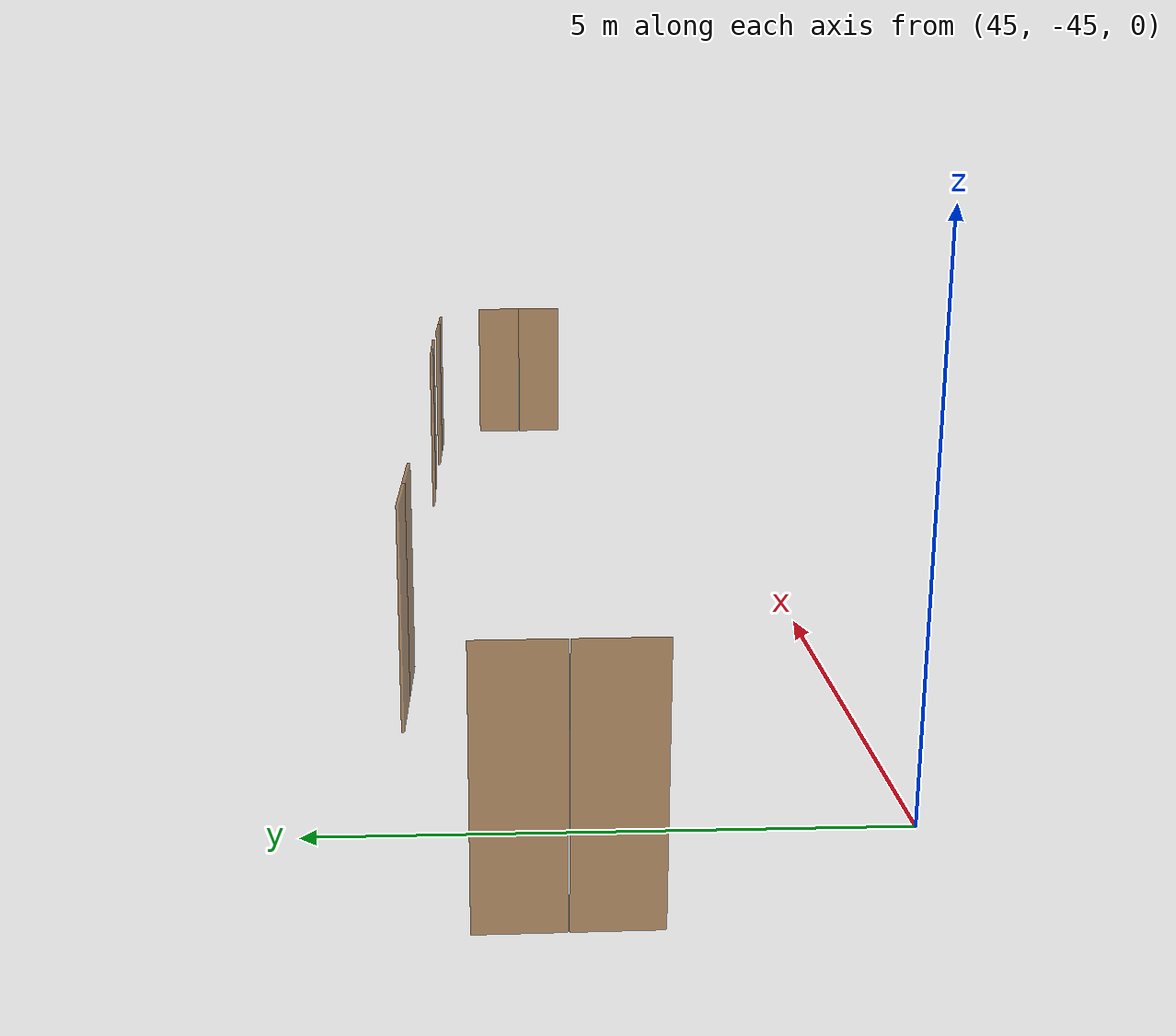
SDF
<sdf version="1.7">
 <world name="sim_world">
  <model name="door35">
   <pose>43.50659852516488 -42.08299467356336 0.0 0 0 1.5807739370104015</pose>
   <link name="right">
    <pose>0.35148767504057044 0 1.11 0 0 0</pose>
    <visual name="right_visual">
     <geometry><box><size>0.6929753500811409 0.03 2.2</size></box></geometry>
     <material>
      <ambient>0.5 0.25 0 0.6</ambient>
      <diffuse>0.5 0.25 0 0.6</diffuse>
      <pbr><metal><metalness>0.0</metalness></metal></pbr>
     </material>
    </visual>
    <collision name="right_collision">
     <geometry><box><size>0.6929753500811409 0.03 2.2</size></box></geometry>
     <surface><contact><collide_bitmask>0x02</collide_bitmask></contact></surface>
    </collision>
    <inertial>
     <mass>50.0</mass>
     <inertia><ixx>20.17041666666667</ixx><iyy>22.167561815917004</iyy><izz>2.0046451492503325</izz></inertia>
    </inertial>
   </link>
   <joint name="right_joint" type="revolute">
    <parent>world</parent>
    <child>right</child>
    <axis><xyz>0 0 1</xyz><limit><lower>0</lower><upper>1.57</upper></limit></axis>
    <pose>0.35148767504057044 0 0 0 0 0</pose>
   </joint>
   <link name="left">
    <pose>-0.35148767504057044 0 1.11 0 0 0</pose>
    <visual name="left_visual">
     <geometry><box><size>0.6929753500811409 0.03 2.2</size></box></geometry>
     <material>
      <ambient>0.5 0.25 0 0.6</ambient>
      <diffuse>0.5 0.25 0 0.6</diffuse>
      <pbr><metal><metalness>0.0</metalness></metal></pbr>
     </material>
    </visual>
    <collision name="left_collision">
     <geometry><box><size>0.6929753500811409 0.03 2.2</size></box></geometry>
     <surface><contact><collide_bitmask>0x02</collide_bitmask></contact></surface>
    </collision>
    <inertial>
     <mass>50.0</mass>
     <inertia><ixx>20.17041666666667</ixx><iyy>22.167561815917004</iyy><izz>2.0046451492503325</izz></inertia>
    </inertial>
   </link>
   <joint name="left_joint" type="revolute">
    <parent>world</parent>
    <child>left</child>
    <axis><xyz>0 0 1</xyz><limit><lower>-1.57</lower><upper>0</upper></limit></axis>
    <pose>-0.35148767504057044 0 0 0 0 0</pose>
   </joint>
   <plugin name="register_component" filename="libregister_component.so">
    <component name="Door">
     <v_max_door>0.5</v_max_door>
     <a_max_door>0.3</a_max_door>
     <a_nom_door>0.15</a_nom_door>
     <dx_min_door>0.01</dx_min_door>
     <f_max_door>500.0</f_max_door>
     <ros_interface>true</ros_interface>
     <door name="door35" type="DoubleSwingDoor" left_joint_name="left_joint" right_joint_name="right_joint"/>
    </component>
   </plugin>
  </model>
  <model name="door50_end">
   <pose>47.890299052596646 -40.72851539185036 0.0 0 0 3.129558129345192</pose>
   <link name="right">
    <pose>0.42026289412022444 0 1.11 0 0 0</pose>
    <visual name="right_visual">
     <geometry><box><size>0.8305257882404489 0.03 2.2</size></box></geometry>
     <material>
      <ambient>0.5 0.25 0 0.6</ambient>
      <diffuse>0.5 0.25 0 0.6</diffuse>
      <pbr><metal><metalness>0.0</metalness></metal></pbr>
     </material>
    </visual>
    <collision name="right_collision">
     <geometry><box><size>0.8305257882404489 0.03 2.2</size></box></geometry>
     <surface><contact><collide_bitmask>0x02</collide_bitmask></contact></surface>
    </collision>
    <inertial>
     <mass>50.0</mass>
     <inertia><ixx>20.17041666666667</ixx><iyy>23.040721187218416</iyy><izz>2.877804520551746</izz></inertia>
    </inertial>
   </link>
   <joint name="right_joint" type="revolute">
    <parent>world</parent>
    <child>right</child>
    <axis><xyz>0 0 1</xyz><limit><lower>0</lower><upper>1.57</upper></limit></axis>
    <pose>0.42026289412022444 0 0 0 0 0</pose>
   </joint>
   <link name="left">
    <pose>-0.42026289412022444 0 1.11 0 0 0</pose>
    <visual name="left_visual">
     <geometry><box><size>0.8305257882404489 0.03 2.2</size></box></geometry>
     <material>
      <ambient>0.5 0.25 0 0.6</ambient>
      <diffuse>0.5 0.25 0 0.6</diffuse>
      <pbr><metal><metalness>0.0</metalness></metal></pbr>
     </material>
    </visual>
    <collision name="left_collision">
     <geometry><box><size>0.8305257882404489 0.03 2.2</size></box></geometry>
     <surface><contact><collide_bitmask>0x02</collide_bitmask></contact></surface>
    </collision>
    <inertial>
     <mass>50.0</mass>
     <inertia><ixx>20.17041666666667</ixx><iyy>23.040721187218416</iyy><izz>2.877804520551746</izz></inertia>
    </inertial>
   </link>
   <joint name="left_joint" type="revolute">
    <parent>world</parent>
    <child>left</child>
    <axis><xyz>0 0 1</xyz><limit><lower>-1.57</lower><upper>0</upper></limit></axis>
    <pose>-0.42026289412022444 0 0 0 0 0</pose>
   </joint>
   <plugin name="register_component" filename="libregister_component.so">
    <component name="Door">
     <v_max_door>0.5</v_max_door>
     <a_max_door>0.3</a_max_door>
     <a_nom_door>0.15</a_nom_door>
     <dx_min_door>0.01</dx_min_door>
     <f_max_door>500.0</f_max_door>
     <ros_interface>true</ros_interface>
     <door name="door50_end" type="DoubleSwingDoor" left_joint_name="left_joint" right_joint_name="right_joint"/>
    </component>
   </plugin>
  </model>
  <model name="door53">
   <pose>60.49353407531002 -42.09518204531938 0.0 0 0 1.565200598498661</pose>
   <link name="right">
    <pose>0.3522075155548428 0 1.11 0 0 0</pose>
    <visual name="right_visual">
     <geometry><box><size>0.6944150311096856 0.03 2.2</size></box></geometry>
     <material>
      <ambient>0.5 0.25 0 0.6</ambient>
      <diffuse>0.5 0.25 0 0.6</diffuse>
      <pbr><metal><metalness>0.0</metalness></metal></pbr>
     </material>
    </visual>
    <collision name="right_collision">
     <geometry><box><size>0.6944150311096856 0.03 2.2</size></box></geometry>
     <surface><contact><collide_bitmask>0x02</collide_bitmask></contact></surface>
    </collision>
    <inertial>
     <mass>50.0</mass>
     <inertia><ixx>20.17041666666667</ixx><iyy>22.17588431429611</iyy><izz>2.0129676476294405</izz></inertia>
    </inertial>
   </link>
   <joint name="right_joint" type="revolute">
    <parent>world</parent>
    <child>right</child>
    <axis><xyz>0 0 -1</xyz><limit><lower>0</lower><upper>1.57</upper></limit></axis>
    <pose>0.3522075155548428 0 0 0 0 0</pose>
   </joint>
   <link name="left">
    <pose>-0.3522075155548428 0 1.11 0 0 0</pose>
    <visual name="left_visual">
     <geometry><box><size>0.6944150311096856 0.03 2.2</size></box></geometry>
     <material>
      <ambient>0.5 0.25 0 0.6</ambient>
      <diffuse>0.5 0.25 0 0.6</diffuse>
      <pbr><metal><metalness>0.0</metalness></metal></pbr>
     </material>
    </visual>
    <collision name="left_collision">
     <geometry><box><size>0.6944150311096856 0.03 2.2</size></box></geometry>
     <surface><contact><collide_bitmask>0x02</collide_bitmask></contact></surface>
    </collision>
    <inertial>
     <mass>50.0</mass>
     <inertia><ixx>20.17041666666667</ixx><iyy>22.17588431429611</iyy><izz>2.0129676476294405</izz></inertia>
    </inertial>
   </link>
   <joint name="left_joint" type="revolute">
    <parent>world</parent>
    <child>left</child>
    <axis><xyz>0 0 -1</xyz><limit><lower>-1.57</lower><upper>0</upper></limit></axis>
    <pose>-0.3522075155548428 0 0 0 0 0</pose>
   </joint>
   <plugin name="register_component" filename="libregister_component.so">
    <component name="Door">
     <v_max_door>0.5</v_max_door>
     <a_max_door>0.3</a_max_door>
     <a_nom_door>0.15</a_nom_door>
     <dx_min_door>0.01</dx_min_door>
     <f_max_door>500.0</f_max_door>
     <ros_interface>true</ros_interface>
     <door name="door53" type="DoubleSwingDoor" left_joint_name="left_joint" right_joint_name="right_joint"/>
    </component>
   </plugin>
  </model>
  <model name="door51_end">
   <pose>56.07999549978592 -40.72164640943376 0.0 0 0 -3.1276099595118416</pose>
   <link name="right">
    <pose>0.42078804497407885 0 1.11 0 0 0</pose>
    <visual name="right_visual">
     <geometry><box><size>0.8315760899481577 0.03 2.2</size></box></geometry>
     <material>
      <ambient>0.5 0.25 0 0.6</ambient>
      <diffuse>0.5 0.25 0 0.6</diffuse>
      <pbr><metal><metalness>0.0</metalness></metal></pbr>
     </material>
    </visual>
    <collision name="right_collision">
     <geometry><box><size>0.8315760899481577 0.03 2.2</size></box></geometry>
     <surface><contact><collide_bitmask>0x02</collide_bitmask></contact></surface>
    </collision>
    <inertial>
     <mass>50.0</mass>
     <inertia><ixx>20.17041666666667</ixx><iyy>23.04799497238945</iyy><izz>2.885078305722777</izz></inertia>
    </inertial>
   </link>
   <joint name="right_joint" type="revolute">
    <parent>world</parent>
    <child>right</child>
    <axis><xyz>0 0 1</xyz><limit><lower>0</lower><upper>1.57</upper></limit></axis>
    <pose>0.42078804497407885 0 0 0 0 0</pose>
   </joint>
   <link name="left">
    <pose>-0.42078804497407885 0 1.11 0 0 0</pose>
    <visual name="left_visual">
     <geometry><box><size>0.8315760899481577 0.03 2.2</size></box></geometry>
     <material>
      <ambient>0.5 0.25 0 0.6</ambient>
      <diffuse>0.5 0.25 0 0.6</diffuse>
      <pbr><metal><metalness>0.0</metalness></metal></pbr>
     </material>
    </visual>
    <collision name="left_collision">
     <geometry><box><size>0.8315760899481577 0.03 2.2</size></box></geometry>
     <surface><contact><collide_bitmask>0x02</collide_bitmask></contact></surface>
    </collision>
    <inertial>
     <mass>50.0</mass>
     <inertia><ixx>20.17041666666667</ixx><iyy>23.04799497238945</iyy><izz>2.885078305722777</izz></inertia>
    </inertial>
   </link>
   <joint name="left_joint" type="revolute">
    <parent>world</parent>
    <child>left</child>
    <axis><xyz>0 0 1</xyz><limit><lower>-1.57</lower><upper>0</upper></limit></axis>
    <pose>-0.42078804497407885 0 0 0 0 0</pose>
   </joint>
   <plugin name="register_component" filename="libregister_component.so">
    <component name="Door">
     <v_max_door>0.5</v_max_door>
     <a_max_door>0.3</a_max_door>
     <a_nom_door>0.15</a_nom_door>
     <dx_min_door>0.01</dx_min_door>
     <f_max_door>500.0</f_max_door>
     <ros_interface>true</ros_interface>
     <door name="door51_end" type="DoubleSwingDoor" left_joint_name="left_joint" right_joint_name="right_joint"/>
    </component>
   </plugin>
  </model>
  <model name="door52_end">
   <pose>58.65960271922345 -40.74315183117686 0.0 0 0 3.1332001126384115</pose>
   <link name="right">
    <pose>0.4126896651469919 0 1.11 0 0 0</pose>
    <visual name="right_visual">
     <geometry><box><size>0.8153793302939838 0.03 2.2</size></box></geometry>
     <material>
      <ambient>0.5 0.25 0 0.6</ambient>
      <diffuse>0.5 0.25 0 0.6</diffuse>
      <pbr><metal><metalness>0.0</metalness></metal></pbr>
     </material>
    </visual>
    <collision name="right_collision">
     <geometry><box><size>0.8153793302939838 0.03 2.2</size></box></geometry>
     <surface><contact><collide_bitmask>0x02</collide_bitmask></contact></surface>
    </collision>
    <inertial>
     <mass>50.0</mass>
     <inertia><ixx>20.17041666666667</ixx><iyy>22.936847717794446</iyy><izz>2.7739310511277733</izz></inertia>
    </inertial>
   </link>
   <joint name="right_joint" type="revolute">
    <parent>world</parent>
    <child>right</child>
    <axis><xyz>0 0 1</xyz><limit><lower>0</lower><upper>1.57</upper></limit></axis>
    <pose>0.4126896651469919 0 0 0 0 0</pose>
   </joint>
   <link name="left">
    <pose>-0.4126896651469919 0 1.11 0 0 0</pose>
    <visual name="left_visual">
     <geometry><box><size>0.8153793302939838 0.03 2.2</size></box></geometry>
     <material>
      <ambient>0.5 0.25 0 0.6</ambient>
      <diffuse>0.5 0.25 0 0.6</diffuse>
      <pbr><metal><metalness>0.0</metalness></metal></pbr>
     </material>
    </visual>
    <collision name="left_collision">
     <geometry><box><size>0.8153793302939838 0.03 2.2</size></box></geometry>
     <surface><contact><collide_bitmask>0x02</collide_bitmask></contact></surface>
    </collision>
    <inertial>
     <mass>50.0</mass>
     <inertia><ixx>20.17041666666667</ixx><iyy>22.936847717794446</iyy><izz>2.7739310511277733</izz></inertia>
    </inertial>
   </link>
   <joint name="left_joint" type="revolute">
    <parent>world</parent>
    <child>left</child>
    <axis><xyz>0 0 1</xyz><limit><lower>-1.57</lower><upper>0</upper></limit></axis>
    <pose>-0.4126896651469919 0 0 0 0 0</pose>
   </joint>
   <plugin name="register_component" filename="libregister_component.so">
    <component name="Door">
     <v_max_door>0.5</v_max_door>
     <a_max_door>0.3</a_max_door>
     <a_nom_door>0.15</a_nom_door>
     <dx_min_door>0.01</dx_min_door>
     <f_max_door>500.0</f_max_door>
     <ros_interface>true</ros_interface>
     <door name="door52_end" type="DoubleSwingDoor" left_joint_name="left_joint" right_joint_name="right_joint"/>
    </component>
   </plugin>
  </model>
 </world>
</sdf>
